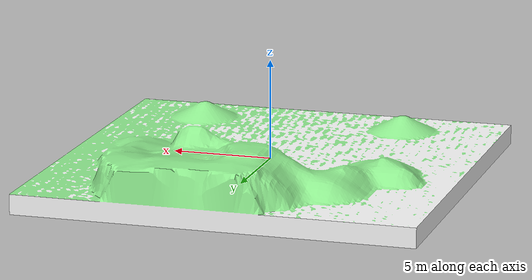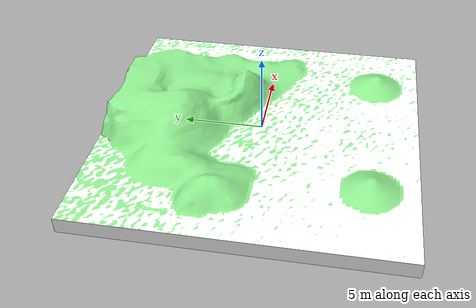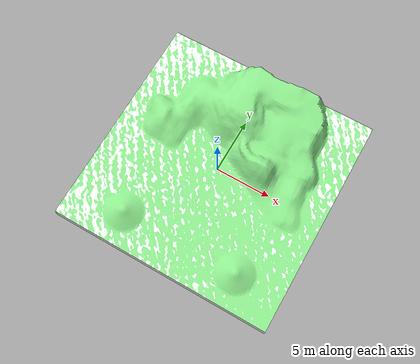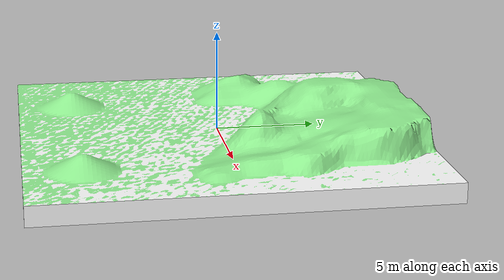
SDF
<?xml version="1.0"?>
<sdf version="1.4">
  <world name="default">
    <include>
      <uri>model://sun</uri>
    </include>
    <include>
      <uri>model://map1</uri>
    </include>
  </world>
</sdf>

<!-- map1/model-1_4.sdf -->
<sdf version="1.4">
  <model name="Map1">
    <static>true</static>
    <link name="link">
      <pose>0 0 0 0 0 0</pose>
      <collision name="collision">
        <geometry>
          <mesh>
            <uri>model://map1/meshes/map1.dae</uri>
            <scale>1.0 1.0 0.5</scale>
          </mesh>
        </geometry>
      </collision>
      <visual name="visual">
        <geometry>
          <mesh>
            <uri>model://map1/meshes/map1.dae</uri>
            <scale>1.0 1.0 0.5</scale>
          </mesh>
        </geometry>
        <material>
          <script>
            <uri>model://map1/materials/scripts</uri>
            <uri>model://map1/materials/textures</uri>
            <name>Map1/Image</name>
          </script>
        </material>
      </visual>
    </link>
  </model>
</sdf>
